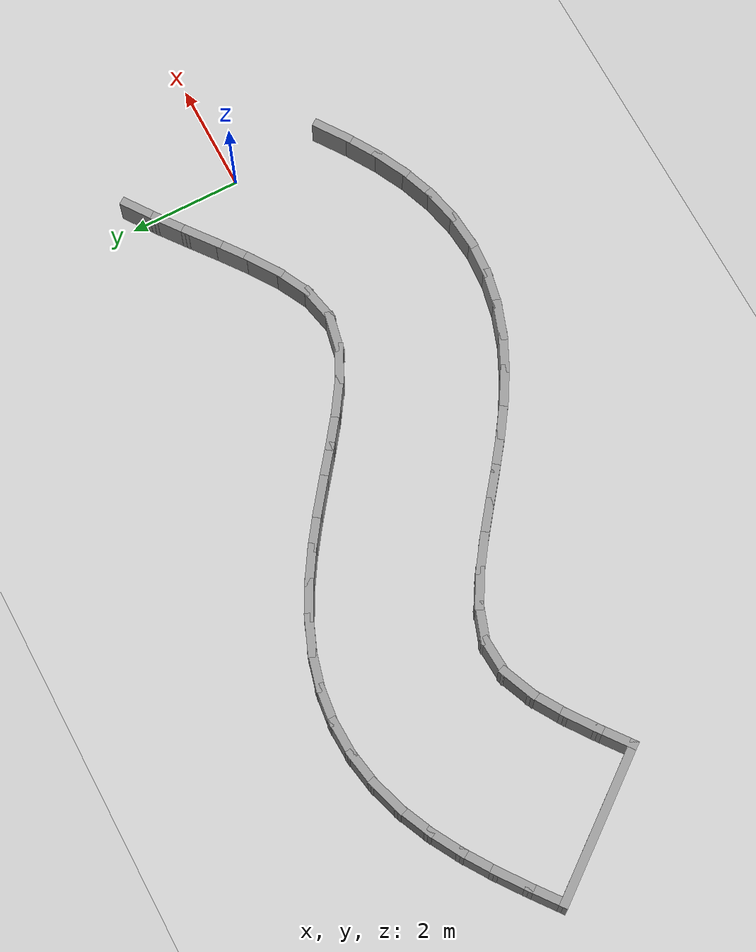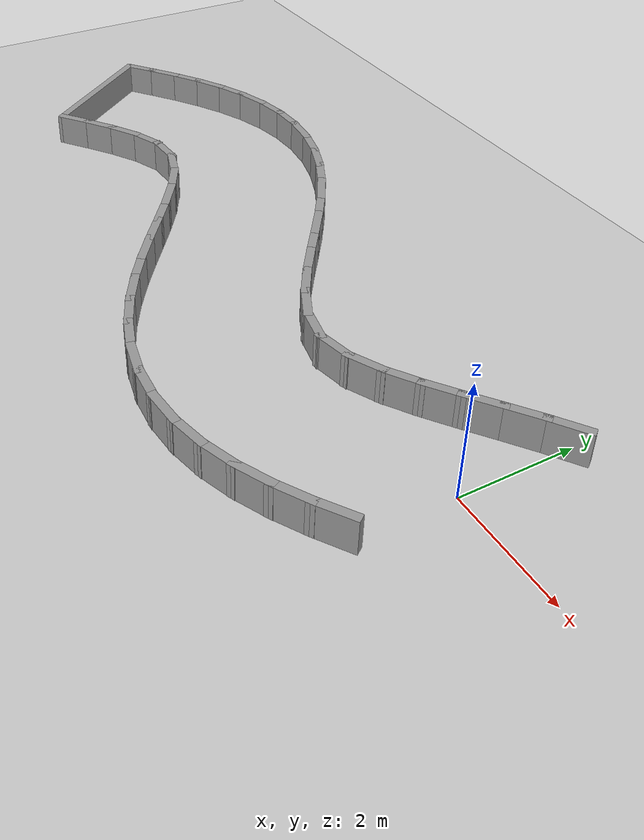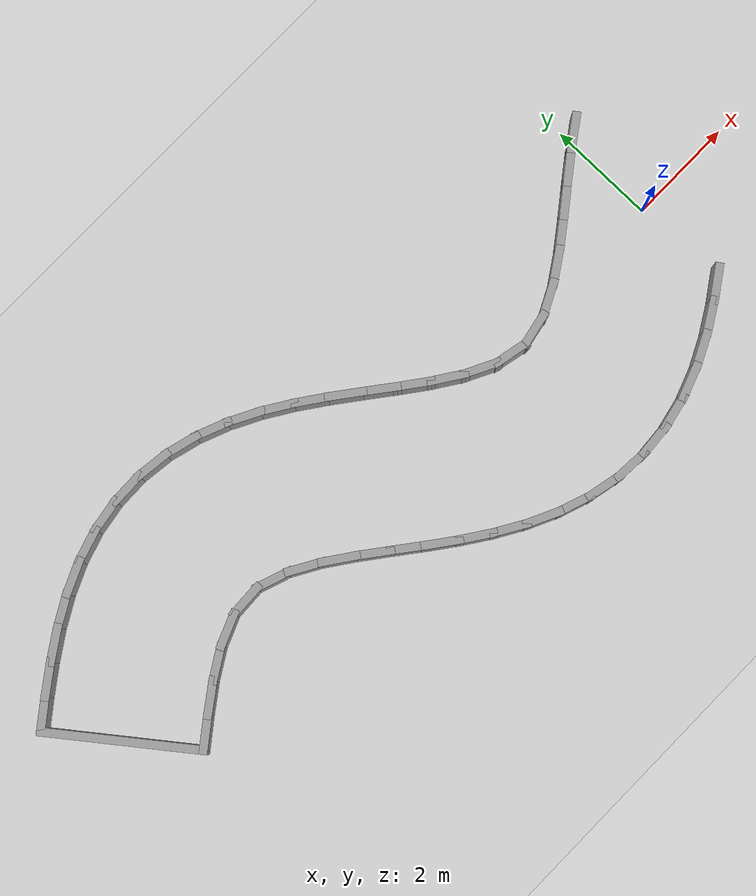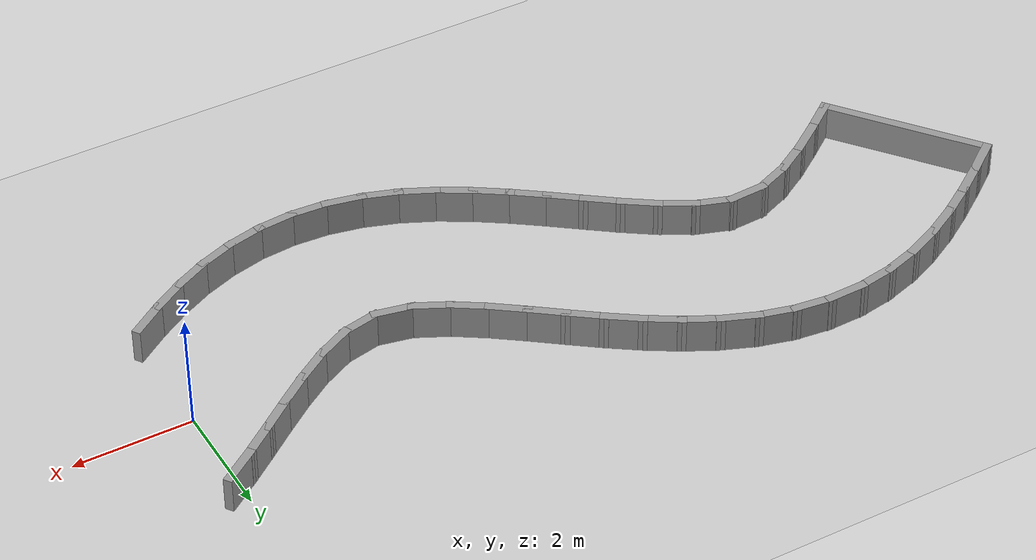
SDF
<sdf version="1.7">
 <world name="default">
  <model name="ground_plane">
   <static>1</static>
   <link name="link">
    <collision name="collision">
     <geometry><plane><normal>0 0 1</normal><size>100 100</size></plane></geometry>
     <surface><friction><ode><mu>100</mu><mu2>50</mu2></ode></friction></surface>
    </collision>
    <visual name="visual">
     <cast_shadows>0</cast_shadows>
     <geometry><plane><normal>0 0 1</normal><size>100 100</size></plane></geometry>
     <material>
      <script><uri>file://media/materials/scripts/gazebo.material</uri><name>Gazebo/Grey</name></script>
     </material>
    </visual>
   </link>
  </model>
  <model name="double_s_curve">
   <link name="Wall_0">
    <collision name="Wall_0_Collision">
     <geometry><box><size>0.7500 0.1500 0.6000</size></box></geometry>
     <pose>0 0 0.3000 0 -0 0</pose>
    </collision>
    <visual name="Wall_0_Visual">
     <pose>0 0 0.3000 0 -0 0</pose>
     <geometry><box><size>0.7500 0.1500 0.6000</size></box></geometry>
     <material>
      <script><uri>file://media/materials/scripts/gazebo.material</uri><name>Gazebo/Grey</name></script>
      <ambient>1 1 1 1</ambient>
     </material>
    </visual>
    <pose>-13.6183 1.2901 0 0 -0 0.65413</pose>
   </link>
   <link name="Wall_1">
    <collision name="Wall_1_Collision">
     <geometry><box><size>0.7500 0.1500 0.6000</size></box></geometry>
     <pose>0 0 0.3000 0 -0 0</pose>
    </collision>
    <visual name="Wall_1_Visual">
     <pose>0 0 0.3000 0 -0 0</pose>
     <geometry><box><size>0.7500 0.1500 0.6000</size></box></geometry>
     <material>
      <script><uri>file://media/materials/scripts/gazebo.material</uri><name>Gazebo/Grey</name></script>
      <ambient>1 1 1 1</ambient>
     </material>
    </visual>
    <pose>-13.1379 1.6494 0 0 -0 0.63034</pose>
   </link>
   <link name="Wall_2">
    <collision name="Wall_2_Collision">
     <geometry><box><size>0.7499 0.1500 0.6000</size></box></geometry>
     <pose>0 0 0.3000 0 -0 0</pose>
    </collision>
    <visual name="Wall_2_Visual">
     <pose>0 0 0.3000 0 -0 0</pose>
     <geometry><box><size>0.7499 0.1500 0.6000</size></box></geometry>
     <material>
      <script><uri>file://media/materials/scripts/gazebo.material</uri><name>Gazebo/Grey</name></script>
      <ambient>1 1 1 1</ambient>
     </material>
    </visual>
    <pose>-12.6453 1.9915 0 0 -0 0.58362</pose>
   </link>
   <link name="Wall_3">
    <collision name="Wall_3_Collision">
     <geometry><box><size>0.7498 0.1500 0.6000</size></box></geometry>
     <pose>0 0 0.3000 0 -0 0</pose>
    </collision>
    <visual name="Wall_3_Visual">
     <pose>0 0 0.3000 0 -0 0</pose>
     <geometry><box><size>0.7498 0.1500 0.6000</size></box></geometry>
     <material>
      <script><uri>file://media/materials/scripts/gazebo.material</uri><name>Gazebo/Grey</name></script>
      <ambient>1 1 1 1</ambient>
     </material>
    </visual>
    <pose>-12.1338 2.3042 0 0 -0 0.51374</pose>
   </link>
   <link name="Wall_4">
    <collision name="Wall_4_Collision">
     <geometry><box><size>0.7497 0.1500 0.6000</size></box></geometry>
     <pose>0 0 0.3000 0 -0 0</pose>
    </collision>
    <visual name="Wall_4_Visual">
     <pose>0 0 0.3000 0 -0 0</pose>
     <geometry><box><size>0.7497 0.1500 0.6000</size></box></geometry>
     <material>
      <script><uri>file://media/materials/scripts/gazebo.material</uri><name>Gazebo/Grey</name></script>
      <ambient>1 1 1 1</ambient>
     </material>
    </visual>
    <pose>-11.5988 2.5740 0 0 -0 0.42040</pose>
   </link>
   <link name="Wall_5">
    <collision name="Wall_5_Collision">
     <geometry><box><size>0.7496 0.1500 0.6000</size></box></geometry>
     <pose>0 0 0.3000 0 -0 0</pose>
    </collision>
    <visual name="Wall_5_Visual">
     <pose>0 0 0.3000 0 -0 0</pose>
     <geometry><box><size>0.7496 0.1500 0.6000</size></box></geometry>
     <material>
      <script><uri>file://media/materials/scripts/gazebo.material</uri><name>Gazebo/Grey</name></script>
      <ambient>1 1 1 1</ambient>
     </material>
    </visual>
    <pose>-11.0391 2.7864 0 0 -0 0.30510</pose>
   </link>
   <link name="Wall_6">
    <collision name="Wall_6_Collision">
     <geometry><box><size>0.7495 0.1500 0.6000</size></box></geometry>
     <pose>0 0 0.3000 0 -0 0</pose>
    </collision>
    <visual name="Wall_6_Visual">
     <pose>0 0 0.3000 0 -0 0</pose>
     <geometry><box><size>0.7495 0.1500 0.6000</size></box></geometry>
     <material>
      <script><uri>file://media/materials/scripts/gazebo.material</uri><name>Gazebo/Grey</name></script>
      <ambient>1 1 1 1</ambient>
     </material>
    </visual>
    <pose>-10.4578 2.9277 0 0 -0 0.17180</pose>
   </link>
   <link name="Wall_7">
    <collision name="Wall_7_Collision">
     <geometry><box><size>0.7494 0.1500 0.6000</size></box></geometry>
     <pose>0 0 0.3000 0 -0 0</pose>
    </collision>
    <visual name="Wall_7_Visual">
     <pose>0 0 0.3000 0 -0 0</pose>
     <geometry><box><size>0.7494 0.1500 0.6000</size></box></geometry>
     <material>
      <script><uri>file://media/materials/scripts/gazebo.material</uri><name>Gazebo/Grey</name></script>
      <ambient>1 1 1 1</ambient>
     </material>
    </visual>
    <pose>-9.8629 2.9873 0 0 -0 0.02768</pose>
   </link>
   <link name="Wall_8">
    <collision name="Wall_8_Collision">
     <geometry><box><size>0.7495 0.1500 0.6000</size></box></geometry>
     <pose>0 0 0.3000 0 -0 0</pose>
    </collision>
    <visual name="Wall_8_Visual">
     <pose>0 0 0.3000 0 -0 0</pose>
     <geometry><box><size>0.7495 0.1500 0.6000</size></box></geometry>
     <material>
      <script><uri>file://media/materials/scripts/gazebo.material</uri><name>Gazebo/Grey</name></script>
      <ambient>1 1 1 1</ambient>
     </material>
    </visual>
    <pose>-9.2656 2.9602 0 0 -0 -0.11822</pose>
   </link>
   <link name="Wall_9">
    <collision name="Wall_9_Collision">
     <geometry><box><size>0.7496 0.1500 0.6000</size></box></geometry>
     <pose>0 0 0.3000 0 -0 0</pose>
    </collision>
    <visual name="Wall_9_Visual">
     <pose>0 0 0.3000 0 -0 0</pose>
     <geometry><box><size>0.7496 0.1500 0.6000</size></box></geometry>
     <material>
      <script><uri>file://media/materials/scripts/gazebo.material</uri><name>Gazebo/Grey</name></script>
      <ambient>1 1 1 1</ambient>
     </material>
    </visual>
    <pose>-8.6780 2.8488 0 0 -0 -0.25658</pose>
   </link>
   <link name="Wall_10">
    <collision name="Wall_10_Collision">
     <geometry><box><size>0.7497 0.1500 0.6000</size></box></geometry>
     <pose>0 0 0.3000 0 -0 0</pose>
    </collision>
    <visual name="Wall_10_Visual">
     <pose>0 0 0.3000 0 -0 0</pose>
     <geometry><box><size>0.7497 0.1500 0.6000</size></box></geometry>
     <material>
      <script><uri>file://media/materials/scripts/gazebo.material</uri><name>Gazebo/Grey</name></script>
      <ambient>1 1 1 1</ambient>
     </material>
    </visual>
    <pose>-8.1095 2.6617 0 0 -0 -0.37935</pose>
   </link>
   <link name="Wall_11">
    <collision name="Wall_11_Collision">
     <geometry><box><size>0.7498 0.1500 0.6000</size></box></geometry>
     <pose>0 0 0.3000 0 -0 0</pose>
    </collision>
    <visual name="Wall_11_Visual">
     <pose>0 0 0.3000 0 -0 0</pose>
     <geometry><box><size>0.7498 0.1500 0.6000</size></box></geometry>
     <material>
      <script><uri>file://media/materials/scripts/gazebo.material</uri><name>Gazebo/Grey</name></script>
      <ambient>1 1 1 1</ambient>
     </material>
    </visual>
    <pose>-7.5652 2.4118 0 0 -0 -0.48114</pose>
   </link>
   <link name="Wall_12">
    <collision name="Wall_12_Collision">
     <geometry><box><size>0.7499 0.1500 0.6000</size></box></geometry>
     <pose>0 0 0.3000 0 -0 0</pose>
    </collision>
    <visual name="Wall_12_Visual">
     <pose>0 0 0.3000 0 -0 0</pose>
     <geometry><box><size>0.7499 0.1500 0.6000</size></box></geometry>
     <material>
      <script><uri>file://media/materials/scripts/gazebo.material</uri><name>Gazebo/Grey</name></script>
      <ambient>1 1 1 1</ambient>
     </material>
    </visual>
    <pose>-7.0452 2.1137 0 0 -0 -0.56013</pose>
   </link>
   <link name="Wall_13">
    <collision name="Wall_13_Collision">
     <geometry><box><size>0.7500 0.1500 0.6000</size></box></geometry>
     <pose>0 0 0.3000 0 -0 0</pose>
    </collision>
    <visual name="Wall_13_Visual">
     <pose>0 0 0.3000 0 -0 0</pose>
     <geometry><box><size>0.7500 0.1500 0.6000</size></box></geometry>
     <material>
      <script><uri>file://media/materials/scripts/gazebo.material</uri><name>Gazebo/Grey</name></script>
      <ambient>1 1 1 1</ambient>
     </material>
    </visual>
    <pose>-6.5462 1.7812 0 0 -0 -0.61537</pose>
   </link>
   <link name="Wall_14">
    <collision name="Wall_14_Collision">
     <geometry><box><size>0.7500 0.1500 0.6000</size></box></geometry>
     <pose>0 0 0.3000 0 -0 0</pose>
    </collision>
    <visual name="Wall_14_Visual">
     <pose>0 0 0.3000 0 -0 0</pose>
     <geometry><box><size>0.7500 0.1500 0.6000</size></box></geometry>
     <material>
      <script><uri>file://media/materials/scripts/gazebo.material</uri><name>Gazebo/Grey</name></script>
      <ambient>1 1 1 1</ambient>
     </material>
    </visual>
    <pose>-6.0620 1.4269 0 0 -0 -0.64786</pose>
   </link>
   <link name="Wall_15">
    <collision name="Wall_15_Collision">
     <geometry><box><size>0.7500 0.1500 0.6000</size></box></geometry>
     <pose>0 0 0.3000 0 -0 0</pose>
    </collision>
    <visual name="Wall_15_Visual">
     <pose>0 0 0.3000 0 -0 0</pose>
     <geometry><box><size>0.7500 0.1500 0.6000</size></box></geometry>
     <material>
      <script><uri>file://media/materials/scripts/gazebo.material</uri><name>Gazebo/Grey</name></script>
      <ambient>1 1 1 1</ambient>
     </material>
    </visual>
    <pose>-5.5852 1.0627 0 0 -0 -0.65696</pose>
   </link>
   <link name="Wall_16">
    <collision name="Wall_16_Collision">
     <geometry><box><size>0.7500 0.1500 0.6000</size></box></geometry>
     <pose>0 0 0.3000 0 -0 0</pose>
    </collision>
    <visual name="Wall_16_Visual">
     <pose>0 0 0.3000 0 -0 0</pose>
     <geometry><box><size>0.7500 0.1500 0.6000</size></box></geometry>
     <material>
      <script><uri>file://media/materials/scripts/gazebo.material</uri><name>Gazebo/Grey</name></script>
      <ambient>1 1 1 1</ambient>
     </material>
    </visual>
    <pose>-5.1069 0.7005 0 0 -0 -0.63922</pose>
   </link>
   <link name="Wall_17">
    <collision name="Wall_17_Collision">
     <geometry><box><size>0.7498 0.1500 0.6000</size></box></geometry>
     <pose>0 0 0.3000 0 -0 0</pose>
    </collision>
    <visual name="Wall_17_Visual">
     <pose>0 0 0.3000 0 -0 0</pose>
     <geometry><box><size>0.7498 0.1500 0.6000</size></box></geometry>
     <material>
      <script><uri>file://media/materials/scripts/gazebo.material</uri><name>Gazebo/Grey</name></script>
      <ambient>1 1 1 1</ambient>
     </material>
    </visual>
    <pose>-4.6161 0.3560 0 0 -0 -0.58482</pose>
   </link>
   <link name="Wall_18">
    <collision name="Wall_18_Collision">
     <geometry><box><size>0.7493 0.1500 0.6000</size></box></geometry>
     <pose>0 0 0.3000 0 -0 0</pose>
    </collision>
    <visual name="Wall_18_Visual">
     <pose>0 0 0.3000 0 -0 0</pose>
     <geometry><box><size>0.7493 0.1500 0.6000</size></box></geometry>
     <material>
      <script><uri>file://media/materials/scripts/gazebo.material</uri><name>Gazebo/Grey</name></script>
      <ambient>1 1 1 1</ambient>
     </material>
    </visual>
    <pose>-4.0984 0.0557 0 0 -0 -0.46615</pose>
   </link>
   <link name="Wall_19">
    <collision name="Wall_19_Collision">
     <geometry><box><size>0.7465 0.1500 0.6000</size></box></geometry>
     <pose>0 0 0.3000 0 -0 0</pose>
    </collision>
    <visual name="Wall_19_Visual">
     <pose>0 0 0.3000 0 -0 0</pose>
     <geometry><box><size>0.7465 0.1500 0.6000</size></box></geometry>
     <material>
      <script><uri>file://media/materials/scripts/gazebo.material</uri><name>Gazebo/Grey</name></script>
      <ambient>1 1 1 1</ambient>
     </material>
    </visual>
    <pose>-3.5387 -0.1395 0 0 -0 -0.20434</pose>
   </link>
   <link name="Wall_20">
    <collision name="Wall_20_Collision">
     <geometry><box><size>0.7465 0.1500 0.6000</size></box></geometry>
     <pose>0 0 0.3000 0 -0 0</pose>
    </collision>
    <visual name="Wall_20_Visual">
     <pose>0 0 0.3000 0 -0 0</pose>
     <geometry><box><size>0.7465 0.1500 0.6000</size></box></geometry>
     <material>
      <script><uri>file://media/materials/scripts/gazebo.material</uri><name>Gazebo/Grey</name></script>
      <ambient>1 1 1 1</ambient>
     </material>
    </visual>
    <pose>-2.9548 -0.1382 0 0 -0 0.20846</pose>
   </link>
   <link name="Wall_21">
    <collision name="Wall_21_Collision">
     <geometry><box><size>0.7493 0.1500 0.6000</size></box></geometry>
     <pose>0 0 0.3000 0 -0 0</pose>
    </collision>
    <visual name="Wall_21_Visual">
     <pose>0 0 0.3000 0 -0 0</pose>
     <geometry><box><size>0.7493 0.1500 0.6000</size></box></geometry>
     <material>
      <script><uri>file://media/materials/scripts/gazebo.material</uri><name>Gazebo/Grey</name></script>
      <ambient>1 1 1 1</ambient>
     </material>
    </visual>
    <pose>-2.3956 0.0587 0 0 -0 0.46808</pose>
   </link>
   <link name="Wall_22">
    <collision name="Wall_22_Collision">
     <geometry><box><size>0.7498 0.1500 0.6000</size></box></geometry>
     <pose>0 0 0.3000 0 -0 0</pose>
    </collision>
    <visual name="Wall_22_Visual">
     <pose>0 0 0.3000 0 -0 0</pose>
     <geometry><box><size>0.7498 0.1500 0.6000</size></box></geometry>
     <material>
      <script><uri>file://media/materials/scripts/gazebo.material</uri><name>Gazebo/Grey</name></script>
      <ambient>1 1 1 1</ambient>
     </material>
    </visual>
    <pose>-1.8783 0.3597 0 0 -0 0.58573</pose>
   </link>
   <link name="Wall_23">
    <collision name="Wall_23_Collision">
     <geometry><box><size>0.7500 0.1500 0.6000</size></box></geometry>
     <pose>0 0 0.3000 0 -0 0</pose>
    </collision>
    <visual name="Wall_23_Visual">
     <pose>0 0 0.3000 0 -0 0</pose>
     <geometry><box><size>0.7500 0.1500 0.6000</size></box></geometry>
     <material>
      <script><uri>file://media/materials/scripts/gazebo.material</uri><name>Gazebo/Grey</name></script>
      <ambient>1 1 1 1</ambient>
     </material>
    </visual>
    <pose>-1.3876 0.7045 0 0 -0 0.63961</pose>
   </link>
   <link name="Wall_24">
    <collision name="Wall_24_Collision">
     <geometry><box><size>0.7500 0.1500 0.6000</size></box></geometry>
     <pose>0 0 0.3000 0 -0 0</pose>
    </collision>
    <visual name="Wall_24_Visual">
     <pose>0 0 0.3000 0 -0 0</pose>
     <geometry><box><size>0.7500 0.1500 0.6000</size></box></geometry>
     <material>
      <script><uri>file://media/materials/scripts/gazebo.material</uri><name>Gazebo/Grey</name></script>
      <ambient>1 1 1 1</ambient>
     </material>
    </visual>
    <pose>-0.9094 1.0668 0 0 -0 0.65699</pose>
   </link>
   <link name="Wall_25">
    <collision name="Wall_25_Collision">
     <geometry><box><size>0.7500 0.1500 0.6000</size></box></geometry>
     <pose>0 0 0.3000 0 -0 0</pose>
    </collision>
    <visual name="Wall_25_Visual">
     <pose>0 0 0.3000 0 -0 0</pose>
     <geometry><box><size>0.7500 0.1500 0.6000</size></box></geometry>
     <material>
      <script><uri>file://media/materials/scripts/gazebo.material</uri><name>Gazebo/Grey</name></script>
      <ambient>1 1 1 1</ambient>
     </material>
    </visual>
    <pose>-0.4326 1.4310 0 0 -0 0.64763</pose>
   </link>
   <link name="Wall_26">
    <collision name="Wall_26_Collision">
     <geometry><box><size>0.7499 0.1500 0.6000</size></box></geometry>
     <pose>0 0 0.3000 0 -0 0</pose>
    </collision>
    <visual name="Wall_26_Visual">
     <pose>0 0 0.3000 0 -0 0</pose>
     <geometry><box><size>0.7499 0.1500 0.6000</size></box></geometry>
     <material>
      <script><uri>file://media/materials/scripts/gazebo.material</uri><name>Gazebo/Grey</name></script>
      <ambient>1 1 1 1</ambient>
     </material>
    </visual>
    <pose>0.0517 1.7850 0 0 -0 0.61487</pose>
   </link>
   <link name="Wall_50">
    <collision name="Wall_50_Collision">
     <geometry><box><size>0.7500 0.1500 0.6000</size></box></geometry>
     <pose>0 0 0.3000 0 -0 0</pose>
    </collision>
    <visual name="Wall_50_Visual">
     <pose>0 0 0.3000 0 -0 0</pose>
     <geometry><box><size>0.7500 0.1500 0.6000</size></box></geometry>
     <material>
      <script><uri>file://media/materials/scripts/gazebo.material</uri><name>Gazebo/Grey</name></script>
      <ambient>1 1 1 1</ambient>
     </material>
    </visual>
    <pose>-11.9055 -0.9251 0 0 -0 0.65376</pose>
   </link>
   <link name="Wall_51">
    <collision name="Wall_51_Collision">
     <geometry><box><size>0.7499 0.1500 0.6000</size></box></geometry>
     <pose>0 0 0.3000 0 -0 0</pose>
    </collision>
    <visual name="Wall_51_Visual">
     <pose>0 0 0.3000 0 -0 0</pose>
     <geometry><box><size>0.7499 0.1500 0.6000</size></box></geometry>
     <material>
      <script><uri>file://media/materials/scripts/gazebo.material</uri><name>Gazebo/Grey</name></script>
      <ambient>1 1 1 1</ambient>
     </material>
    </visual>
    <pose>-11.4239 -0.5674 0 0 -0 0.62391</pose>
   </link>
   <link name="Wall_52">
    <collision name="Wall_52_Collision">
     <geometry><box><size>0.7497 0.1500 0.6000</size></box></geometry>
     <pose>0 0 0.3000 0 -0 0</pose>
    </collision>
    <visual name="Wall_52_Visual">
     <pose>0 0 0.3000 0 -0 0</pose>
     <geometry><box><size>0.7497 0.1500 0.6000</size></box></geometry>
     <material>
      <script><uri>file://media/materials/scripts/gazebo.material</uri><name>Gazebo/Grey</name></script>
      <ambient>1 1 1 1</ambient>
     </material>
    </visual>
    <pose>-10.9248 -0.2354 0 0 -0 0.55015</pose>
   </link>
   <link name="Wall_53">
    <collision name="Wall_53_Collision">
     <geometry><box><size>0.7487 0.1500 0.6000</size></box></geometry>
     <pose>0 0 0.3000 0 -0 0</pose>
    </collision>
    <visual name="Wall_53_Visual">
     <pose>0 0 0.3000 0 -0 0</pose>
     <geometry><box><size>0.7487 0.1500 0.6000</size></box></geometry>
     <material>
      <script><uri>file://media/materials/scripts/gazebo.material</uri><name>Gazebo/Grey</name></script>
      <ambient>1 1 1 1</ambient>
     </material>
    </visual>
    <pose>-10.3925 0.0355 0 0 -0 0.39104</pose>
   </link>
   <link name="Wall_54">
    <collision name="Wall_54_Collision">
     <geometry><box><size>0.7451 0.1500 0.6000</size></box></geometry>
     <pose>0 0 0.3000 0 -0 0</pose>
    </collision>
    <visual name="Wall_54_Visual">
     <pose>0 0 0.3000 0 -0 0</pose>
     <geometry><box><size>0.7451 0.1500 0.6000</size></box></geometry>
     <material>
      <script><uri>file://media/materials/scripts/gazebo.material</uri><name>Gazebo/Grey</name></script>
      <ambient>1 1 1 1</ambient>
     </material>
    </visual>
    <pose>-9.8186 0.1647 0 0 -0 0.05079</pose>
   </link>
   <link name="Wall_55">
    <collision name="Wall_55_Collision">
     <geometry><box><size>0.7480 0.1500 0.6000</size></box></geometry>
     <pose>0 0 0.3000 0 -0 0</pose>
    </collision>
    <visual name="Wall_55_Visual">
     <pose>0 0 0.3000 0 -0 0</pose>
     <geometry><box><size>0.7480 0.1500 0.6000</size></box></geometry>
     <material>
      <script><uri>file://media/materials/scripts/gazebo.material</uri><name>Gazebo/Grey</name></script>
      <ambient>1 1 1 1</ambient>
     </material>
    </visual>
    <pose>-9.2386 0.0826 0 0 -0 -0.33122</pose>
   </link>
   <link name="Wall_56">
    <collision name="Wall_56_Collision">
     <geometry><box><size>0.7496 0.1500 0.6000</size></box></geometry>
     <pose>0 0 0.3000 0 -0 0</pose>
    </collision>
    <visual name="Wall_56_Visual">
     <pose>0 0 0.3000 0 -0 0</pose>
     <geometry><box><size>0.7496 0.1500 0.6000</size></box></geometry>
     <material>
      <script><uri>file://media/materials/scripts/gazebo.material</uri><name>Gazebo/Grey</name></script>
      <ambient>1 1 1 1</ambient>
     </material>
    </visual>
    <pose>-8.6962 -0.1645 0 0 -0 -0.52321</pose>
   </link>
   <link name="Wall_57">
    <collision name="Wall_57_Collision">
     <geometry><box><size>0.7499 0.1500 0.6000</size></box></geometry>
     <pose>0 0 0.3000 0 -0 0</pose>
    </collision>
    <visual name="Wall_57_Visual">
     <pose>0 0 0.3000 0 -0 0</pose>
     <geometry><box><size>0.7499 0.1500 0.6000</size></box></geometry>
     <material>
      <script><uri>file://media/materials/scripts/gazebo.material</uri><name>Gazebo/Grey</name></script>
      <ambient>1 1 1 1</ambient>
     </material>
    </visual>
    <pose>-8.1909 -0.4865 0 0 -0 -0.61144</pose>
   </link>
   <link name="Wall_58">
    <collision name="Wall_58_Collision">
     <geometry><box><size>0.7500 0.1500 0.6000</size></box></geometry>
     <pose>0 0 0.3000 0 -0 0</pose>
    </collision>
    <visual name="Wall_58_Visual">
     <pose>0 0 0.3000 0 -0 0</pose>
     <geometry><box><size>0.7500 0.1500 0.6000</size></box></geometry>
     <material>
      <script><uri>file://media/materials/scripts/gazebo.material</uri><name>Gazebo/Grey</name></script>
      <ambient>1 1 1 1</ambient>
     </material>
    </visual>
    <pose>-7.7064 -0.8401 0 0 -0 -0.64973</pose>
   </link>
   <link name="Wall_59">
    <collision name="Wall_59_Collision">
     <geometry><box><size>0.7500 0.1500 0.6000</size></box></geometry>
     <pose>0 0 0.3000 0 -0 0</pose>
    </collision>
    <visual name="Wall_59_Visual">
     <pose>0 0 0.3000 0 -0 0</pose>
     <geometry><box><size>0.7500 0.1500 0.6000</size></box></geometry>
     <material>
      <script><uri>file://media/materials/scripts/gazebo.material</uri><name>Gazebo/Grey</name></script>
      <ambient>1 1 1 1</ambient>
     </material>
    </visual>
    <pose>-7.2298 -1.2047 0 0 -0 -0.65633</pose>
   </link>
   <link name="Wall_60">
    <collision name="Wall_60_Collision">
     <geometry><box><size>0.7500 0.1500 0.6000</size></box></geometry>
     <pose>0 0 0.3000 0 -0 0</pose>
    </collision>
    <visual name="Wall_60_Visual">
     <pose>0 0 0.3000 0 -0 0</pose>
     <geometry><box><size>0.7500 0.1500 0.6000</size></box></geometry>
     <material>
      <script><uri>file://media/materials/scripts/gazebo.material</uri><name>Gazebo/Grey</name></script>
      <ambient>1 1 1 1</ambient>
     </material>
    </visual>
    <pose>-6.7512 -1.5664 0 0 -0 -0.63798</pose>
   </link>
   <link name="Wall_61">
    <collision name="Wall_61_Collision">
     <geometry><box><size>0.7499 0.1500 0.6000</size></box></geometry>
     <pose>0 0 0.3000 0 -0 0</pose>
    </collision>
    <visual name="Wall_61_Visual">
     <pose>0 0 0.3000 0 -0 0</pose>
     <geometry><box><size>0.7499 0.1500 0.6000</size></box></geometry>
     <material>
      <script><uri>file://media/materials/scripts/gazebo.material</uri><name>Gazebo/Grey</name></script>
      <ambient>1 1 1 1</ambient>
     </material>
    </visual>
    <pose>-6.2621 -1.9136 0 0 -0 -0.59659</pose>
   </link>
   <link name="Wall_62">
    <collision name="Wall_62_Collision">
     <geometry><box><size>0.7499 0.1500 0.6000</size></box></geometry>
     <pose>0 0 0.3000 0 -0 0</pose>
    </collision>
    <visual name="Wall_62_Visual">
     <pose>0 0 0.3000 0 -0 0</pose>
     <geometry><box><size>0.7499 0.1500 0.6000</size></box></geometry>
     <material>
      <script><uri>file://media/materials/scripts/gazebo.material</uri><name>Gazebo/Grey</name></script>
      <ambient>1 1 1 1</ambient>
     </material>
    </visual>
    <pose>-5.7555 -2.2343 0 0 -0 -0.53219</pose>
   </link>
   <link name="Wall_63">
    <collision name="Wall_63_Collision">
     <geometry><box><size>0.7497 0.1500 0.6000</size></box></geometry>
     <pose>0 0 0.3000 0 -0 0</pose>
    </collision>
    <visual name="Wall_63_Visual">
     <pose>0 0 0.3000 0 -0 0</pose>
     <geometry><box><size>0.7497 0.1500 0.6000</size></box></geometry>
     <material>
      <script><uri>file://media/materials/scripts/gazebo.material</uri><name>Gazebo/Grey</name></script>
      <ambient>1 1 1 1</ambient>
     </material>
    </visual>
    <pose>-5.2263 -2.5154 0 0 -0 -0.44433</pose>
   </link>
   <link name="Wall_64">
    <collision name="Wall_64_Collision">
     <geometry><box><size>0.7496 0.1500 0.6000</size></box></geometry>
     <pose>0 0 0.3000 0 -0 0</pose>
    </collision>
    <visual name="Wall_64_Visual">
     <pose>0 0 0.3000 0 -0 0</pose>
     <geometry><box><size>0.7496 0.1500 0.6000</size></box></geometry>
     <material>
      <script><uri>file://media/materials/scripts/gazebo.material</uri><name>Gazebo/Grey</name></script>
      <ambient>1 1 1 1</ambient>
     </material>
    </visual>
    <pose>-4.6723 -2.7426 0 0 -0 -0.33395</pose>
   </link>
   <link name="Wall_65">
    <collision name="Wall_65_Collision">
     <geometry><box><size>0.7495 0.1500 0.6000</size></box></geometry>
     <pose>0 0 0.3000 0 -0 0</pose>
    </collision>
    <visual name="Wall_65_Visual">
     <pose>0 0 0.3000 0 -0 0</pose>
     <geometry><box><size>0.7495 0.1500 0.6000</size></box></geometry>
     <material>
      <script><uri>file://media/materials/scripts/gazebo.material</uri><name>Gazebo/Grey</name></script>
      <ambient>1 1 1 1</ambient>
     </material>
    </visual>
    <pose>-4.0955 -2.9017 0 0 -0 -0.20428</pose>
   </link>
   <link name="Wall_66">
    <collision name="Wall_66_Collision">
     <geometry><box><size>0.7495 0.1500 0.6000</size></box></geometry>
     <pose>0 0 0.3000 0 -0 0</pose>
    </collision>
    <visual name="Wall_66_Visual">
     <pose>0 0 0.3000 0 -0 0</pose>
     <geometry><box><size>0.7495 0.1500 0.6000</size></box></geometry>
     <material>
      <script><uri>file://media/materials/scripts/gazebo.material</uri><name>Gazebo/Grey</name></script>
      <ambient>1 1 1 1</ambient>
     </material>
    </visual>
    <pose>-3.5028 -2.9810 0 0 -0 -0.06190</pose>
   </link>
   <link name="Wall_67">
    <collision name="Wall_67_Collision">
     <geometry><box><size>0.7495 0.1500 0.6000</size></box></geometry>
     <pose>0 0 0.3000 0 -0 0</pose>
    </collision>
    <visual name="Wall_67_Visual">
     <pose>0 0 0.3000 0 -0 0</pose>
     <geometry><box><size>0.7495 0.1500 0.6000</size></box></geometry>
     <material>
      <script><uri>file://media/materials/scripts/gazebo.material</uri><name>Gazebo/Grey</name></script>
      <ambient>1 1 1 1</ambient>
     </material>
    </visual>
    <pose>-2.9050 -2.9743 0 0 -0 0.08444</pose>
   </link>
   <link name="Wall_68">
    <collision name="Wall_68_Collision">
     <geometry><box><size>0.7495 0.1500 0.6000</size></box></geometry>
     <pose>0 0 0.3000 0 -0 0</pose>
    </collision>
    <visual name="Wall_68_Visual">
     <pose>0 0 0.3000 0 -0 0</pose>
     <geometry><box><size>0.7495 0.1500 0.6000</size></box></geometry>
     <material>
      <script><uri>file://media/materials/scripts/gazebo.material</uri><name>Gazebo/Grey</name></script>
      <ambient>1 1 1 1</ambient>
     </material>
    </visual>
    <pose>-2.3142 -2.8820 0 0 -0 0.22533</pose>
   </link>
   <link name="Wall_69">
    <collision name="Wall_69_Collision">
     <geometry><box><size>0.7496 0.1500 0.6000</size></box></geometry>
     <pose>0 0 0.3000 0 -0 0</pose>
    </collision>
    <visual name="Wall_69_Visual">
     <pose>0 0 0.3000 0 -0 0</pose>
     <geometry><box><size>0.7496 0.1500 0.6000</size></box></geometry>
     <material>
      <script><uri>file://media/materials/scripts/gazebo.material</uri><name>Gazebo/Grey</name></script>
      <ambient>1 1 1 1</ambient>
     </material>
    </visual>
    <pose>-1.7406 -2.7116 0 0 -0 0.35231</pose>
   </link>
   <link name="Wall_70">
    <collision name="Wall_70_Collision">
     <geometry><box><size>0.7498 0.1500 0.6000</size></box></geometry>
     <pose>0 0 0.3000 0 -0 0</pose>
    </collision>
    <visual name="Wall_70_Visual">
     <pose>0 0 0.3000 0 -0 0</pose>
     <geometry><box><size>0.7498 0.1500 0.6000</size></box></geometry>
     <material>
      <script><uri>file://media/materials/scripts/gazebo.material</uri><name>Gazebo/Grey</name></script>
      <ambient>1 1 1 1</ambient>
     </material>
    </visual>
    <pose>-1.1904 -2.4752 0 0 -0 0.45932</pose>
   </link>
   <link name="Wall_71">
    <collision name="Wall_71_Collision">
     <geometry><box><size>0.7499 0.1500 0.6000</size></box></geometry>
     <pose>0 0 0.3000 0 -0 0</pose>
    </collision>
    <visual name="Wall_71_Visual">
     <pose>0 0 0.3000 0 -0 0</pose>
     <geometry><box><size>0.7499 0.1500 0.6000</size></box></geometry>
     <material>
      <script><uri>file://media/materials/scripts/gazebo.material</uri><name>Gazebo/Grey</name></script>
      <ambient>1 1 1 1</ambient>
     </material>
    </visual>
    <pose>-0.6649 -2.1871 0 0 -0 0.54382</pose>
   </link>
   <link name="Wall_72">
    <collision name="Wall_72_Collision">
     <geometry><box><size>0.7499 0.1500 0.6000</size></box></geometry>
     <pose>0 0 0.3000 0 -0 0</pose>
    </collision>
    <visual name="Wall_72_Visual">
     <pose>0 0 0.3000 0 -0 0</pose>
     <geometry><box><size>0.7499 0.1500 0.6000</size></box></geometry>
     <material>
      <script><uri>file://media/materials/scripts/gazebo.material</uri><name>Gazebo/Grey</name></script>
      <ambient>1 1 1 1</ambient>
     </material>
    </visual>
    <pose>-0.1614 -1.8614 0 0 -0 0.60447</pose>
   </link>
   <link name="Wall_100">
    <collision name="Wall_100_Collision">
     <geometry><box><size>2.9500 0.1500 0.6000</size></box></geometry>
     <pose>0 0 0.3000 0 -0 0</pose>
    </collision>
    <visual name="Wall_100_Visual">
     <pose>0 0 0.3000 0 -0 0</pose>
     <geometry><box><size>2.9500 0.1500 0.6000</size></box></geometry>
     <material>
      <script><uri>file://media/materials/scripts/gazebo.material</uri><name>Gazebo/Grey</name></script>
      <ambient>1 1 1 1</ambient>
     </material>
    </visual>
    <pose>-13.0000 -0.0000 0 0 -0 2.22901</pose>
   </link>
   <static>1</static>
  </model>
 </world>
</sdf>
